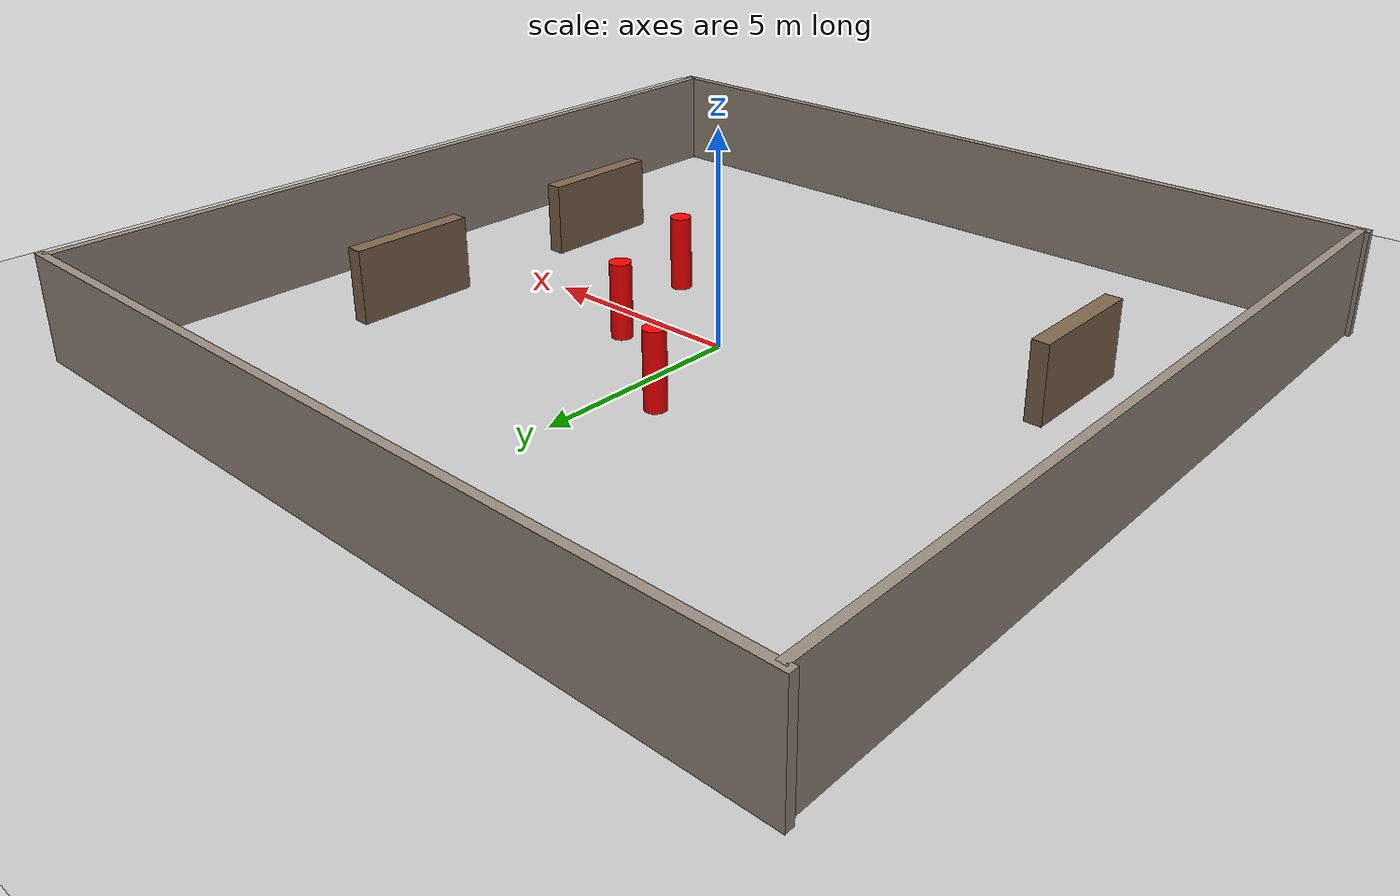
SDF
<?xml version="1.0" ?>
<sdf version="1.6">
  <world name="warehouse2_dynamic">

    <!-- ═══════════════════════════════════════════════════════
         PHYSICS
    ═══════════════════════════════════════════════════════ -->
    <physics name="default_physics" default="true" type="ode">
      <max_step_size>0.001</max_step_size>
      <real_time_factor>1.0</real_time_factor>
      <real_time_update_rate>1000</real_time_update_rate>
      <ode>
        <solver>
          <type>quick</type>
          <iters>150</iters>
          <precon_iters>0</precon_iters>
          <sor>1.400000</sor>
          <use_dynamic_moi_rescaling>1</use_dynamic_moi_rescaling>
        </solver>
        <constraints>
          <cfm>0.00001</cfm>
          <erp>0.2</erp>
          <contact_max_correcting_vel>2000.000000</contact_max_correcting_vel>
          <contact_surface_layer>0.01000</contact_surface_layer>
        </constraints>
      </ode>
    </physics>

    <!-- ═══════════════════════════════════════════════════════
         SCENE / SKY / AMBIENT
    ═══════════════════════════════════════════════════════ -->
    <scene>
      <ambient>0.4 0.4 0.4 1.0</ambient>
      <background>0.25 0.25 0.25 1.0</background>
      <shadows>true</shadows>
      <sky>
        <clouds>
          <speed>12</speed>
        </clouds>
      </sky>
    </scene>

    <!-- ═══════════════════════════════════════════════════════
         GRAVITY
    ═══════════════════════════════════════════════════════ -->
    <gravity>0 0 -9.8</gravity>
    <magnetic_field>6e-06 2.3e-05 -4.2e-05</magnetic_field>
    <atmosphere type="adiabatic"/>

    <!-- ═══════════════════════════════════════════════════════
         GUI
    ═══════════════════════════════════════════════════════ -->
    <gui fullscreen="0">
      <camera name="user_camera">
        <pose>-3.5 -4.5 8.0 0 0.8 0.8</pose>
        <view_controller>orbit</view_controller>
        <projection_type>perspective</projection_type>
      </camera>
    </gui>

    <!-- ═══════════════════════════════════════════════════════
         SUNLIGHT
    ═══════════════════════════════════════════════════════ -->
    <light type="directional" name="sun">
      <cast_shadows>true</cast_shadows>
      <pose>0 0 20 0 0 0</pose>
      <diffuse>0.8 0.8 0.8 1</diffuse>
      <specular>0.2 0.2 0.2 1</specular>
      <attenuation>
        <range>1000</range>
        <constant>0.9</constant>
        <linear>0.01</linear>
        <quadratic>0.001</quadratic>
      </attenuation>
      <direction>-0.5 0.1 -0.9</direction>
    </light>

    <!-- Warehouse overhead lamp style fill lights -->
    <light type="point" name="overhead_light_1">
      <cast_shadows>false</cast_shadows>
      <pose>0 0 4.0 0 0 0</pose>
      <diffuse>0.7 0.7 0.7 1</diffuse>
      <specular>0.1 0.1 0.1 1</specular>
      <attenuation>
        <range>20</range>
        <constant>0.5</constant>
        <linear>0.01</linear>
        <quadratic>0.001</quadratic>
      </attenuation>
    </light>

    <light type="point" name="overhead_light_2">
      <cast_shadows>false</cast_shadows>
      <pose>5 0 4.0 0 0 0</pose>
      <diffuse>0.7 0.7 0.7 1</diffuse>
      <specular>0.1 0.1 0.1 1</specular>
      <attenuation>
        <range>20</range>
        <constant>0.5</constant>
        <linear>0.01</linear>
        <quadratic>0.001</quadratic>
      </attenuation>
    </light>

    <light type="point" name="overhead_light_3">
      <cast_shadows>false</cast_shadows>
      <pose>-5 0 4.0 0 0 0</pose>
      <diffuse>0.7 0.7 0.7 1</diffuse>
      <specular>0.1 0.1 0.1 1</specular>
      <attenuation>
        <range>20</range>
        <constant>0.5</constant>
        <linear>0.01</linear>
        <quadratic>0.001</quadratic>
      </attenuation>
    </light>

    <!-- ═══════════════════════════════════════════════════════
         GROUND PLANE
    ═══════════════════════════════════════════════════════ -->
    <model name="ground_plane">
      <static>true</static>
      <link name="link">
        <collision name="collision">
          <geometry>
            <plane>
              <normal>0 0 1</normal>
              <size>40 40</size>
            </plane>
          </geometry>
          <surface>
            <friction>
              <ode>
                <mu>100</mu>
                <mu2>50</mu2>
              </ode>
            </friction>
          </surface>
        </collision>
        <visual name="visual">
          <cast_shadows>false</cast_shadows>
          <geometry>
            <plane>
              <normal>0 0 1</normal>
              <size>40 40</size>
            </plane>
          </geometry>
          <material>
            <script>
              <uri>file://media/materials/scripts/gazebo.material</uri>
              <name>Gazebo/Concrete</name>
            </script>
          </material>
        </visual>
      </link>
    </model>

    <!-- ═══════════════════════════════════════════════════════
         WAREHOUSE WALLS
         20 m x 20 m perimeter, 2.5 m tall, 0.2 m thick
    ═══════════════════════════════════════════════════════ -->

    <!-- South wall -->
    <model name="wall_south">
      <static>true</static>
      <pose>0 -10 1.25 0 0 0</pose>
      <link name="link">
        <collision name="collision">
          <geometry><box><size>20.4 0.2 2.5</size></box></geometry>
        </collision>
        <visual name="visual">
          <geometry><box><size>20.4 0.2 2.5</size></box></geometry>
          <material>
            <ambient>0.6 0.55 0.5 1</ambient>
            <diffuse>0.6 0.55 0.5 1</diffuse>
          </material>
        </visual>
      </link>
    </model>

    <!-- North wall -->
    <model name="wall_north">
      <static>true</static>
      <pose>0 10 1.25 0 0 0</pose>
      <link name="link">
        <collision name="collision">
          <geometry><box><size>20.4 0.2 2.5</size></box></geometry>
        </collision>
        <visual name="visual">
          <geometry><box><size>20.4 0.2 2.5</size></box></geometry>
          <material>
            <ambient>0.6 0.55 0.5 1</ambient>
            <diffuse>0.6 0.55 0.5 1</diffuse>
          </material>
        </visual>
      </link>
    </model>

    <!-- West wall -->
    <model name="wall_west">
      <static>true</static>
      <pose>-10 0 1.25 0 0 0</pose>
      <link name="link">
        <collision name="collision">
          <geometry><box><size>0.2 20.0 2.5</size></box></geometry>
        </collision>
        <visual name="visual">
          <geometry><box><size>0.2 20.0 2.5</size></box></geometry>
          <material>
            <ambient>0.6 0.55 0.5 1</ambient>
            <diffuse>0.6 0.55 0.5 1</diffuse>
          </material>
        </visual>
      </link>
    </model>

    <!-- East wall -->
    <model name="wall_east">
      <static>true</static>
      <pose>10 0 1.25 0 0 0</pose>
      <link name="link">
        <collision name="collision">
          <geometry><box><size>0.2 20.0 2.5</size></box></geometry>
        </collision>
        <visual name="visual">
          <geometry><box><size>0.2 20.0 2.5</size></box></geometry>
          <material>
            <ambient>0.6 0.55 0.5 1</ambient>
            <diffuse>0.6 0.55 0.5 1</diffuse>
          </material>
        </visual>
      </link>
    </model>

    <!-- ═══════════════════════════════════════════════════════
         WAREHOUSE SHELVES (static props for realism)
    ═══════════════════════════════════════════════════════ -->

    <!-- Shelf row A (east side) -->
    <model name="shelf_A1">
      <static>true</static>
      <pose>7.0 -3.0 0.9 0 0 0</pose>
      <link name="link">
        <collision name="collision">
          <geometry><box><size>0.4 3.0 1.8</size></box></geometry>
        </collision>
        <visual name="visual">
          <geometry><box><size>0.4 3.0 1.8</size></box></geometry>
          <material>
            <ambient>0.5 0.4 0.3 1</ambient>
            <diffuse>0.5 0.4 0.3 1</diffuse>
          </material>
        </visual>
      </link>
    </model>

    <model name="shelf_A2">
      <static>true</static>
      <pose>7.0 3.0 0.9 0 0 0</pose>
      <link name="link">
        <collision name="collision">
          <geometry><box><size>0.4 3.0 1.8</size></box></geometry>
        </collision>
        <visual name="visual">
          <geometry><box><size>0.4 3.0 1.8</size></box></geometry>
          <material>
            <ambient>0.5 0.4 0.3 1</ambient>
            <diffuse>0.5 0.4 0.3 1</diffuse>
          </material>
        </visual>
      </link>
    </model>

    <!-- Shelf row B (west side) -->
    <model name="shelf_B1">
      <static>true</static>
      <pose>-7.0 -3.0 0.9 0 0 0</pose>
      <link name="link">
        <collision name="collision">
          <geometry><box><size>0.4 3.0 1.8</size></box></geometry>
        </collision>
        <visual name="visual">
          <geometry><box><size>0.4 3.0 1.8</size></box></geometry>
          <material>
            <ambient>0.5 0.4 0.3 1</ambient>
            <diffuse>0.5 0.4 0.3 1</diffuse>
          </material>
        </visual>
      </link>
    </model>

    <model name="dynamic_obs_1">
      <allow_auto_disable>false</allow_auto_disable>
      <pose>2.0 1.0 0.9 0 0 0</pose>
      <link name="link">
        <inertial>
          <mass>70.0</mass>
          <inertia>
            <ixx>36.458</ixx><ixy>0</ixy><ixz>0</ixz>
            <iyy>36.458</iyy><iyz>0</iyz>
            <izz>2.188</izz>
          </inertia>
        </inertial>
        <collision name="collision">
          <geometry>
            <cylinder>
              <radius>0.25</radius>
              <length>1.80</length>
            </cylinder>
          </geometry>
          <surface>
            <friction>
              <ode><mu>0.8</mu><mu2>0.8</mu2></ode>
            </friction>
          </surface>
        </collision>
        <visual name="visual">
          <geometry>
            <cylinder>
              <radius>0.25</radius>
              <length>1.80</length>
            </cylinder>
          </geometry>
          <material>
            <ambient>1.0 0.0 0.0 1.0</ambient>
            <diffuse>1.0 0.0 0.0 1.0</diffuse>
            <specular>0.3 0.0 0.0 1.0</specular>
            <emissive>0.1 0.0 0.0 1.0</emissive>
          </material>
        </visual>
      </link>
      <plugin name="planar_move_1" filename="libgazebo_ros_planar_move.so">
        <ros>
          <namespace>/dynamic_obs_1</namespace>
        </ros>
        <update_rate>10</update_rate>
        <publish_rate>10</publish_rate>
        <robot_base_frame>dynamic_obs_1/link</robot_base_frame>
      </plugin>
    </model>

    <model name="dynamic_obs_2">
      <allow_auto_disable>false</allow_auto_disable>
      <pose>-1.0 3.0 0.9 0 0 0</pose>
      <link name="link">
        <inertial>
          <mass>70.0</mass>
          <inertia>
            <ixx>36.458</ixx><ixy>0</ixy><ixz>0</ixz>
            <iyy>36.458</iyy><iyz>0</iyz>
            <izz>2.188</izz>
          </inertia>
        </inertial>
        <collision name="collision">
          <geometry>
            <cylinder>
              <radius>0.25</radius>
              <length>1.80</length>
            </cylinder>
          </geometry>
          <surface>
            <friction>
              <ode><mu>0.8</mu><mu2>0.8</mu2></ode>
            </friction>
          </surface>
        </collision>
        <visual name="visual">
          <geometry>
            <cylinder>
              <radius>0.25</radius>
              <length>1.80</length>
            </cylinder>
          </geometry>
          <material>
            <ambient>1.0 0.0 0.0 1.0</ambient>
            <diffuse>1.0 0.0 0.0 1.0</diffuse>
            <specular>0.3 0.0 0.0 1.0</specular>
            <emissive>0.1 0.0 0.0 1.0</emissive>
          </material>
        </visual>
      </link>
      <plugin name="planar_move_2" filename="libgazebo_ros_planar_move.so">
        <ros>
          <namespace>/dynamic_obs_2</namespace>
        </ros>
        <update_rate>10</update_rate>
        <publish_rate>10</publish_rate>
        <robot_base_frame>dynamic_obs_2/link</robot_base_frame>
      </plugin>
    </model>

    <model name="dynamic_obs_3">
      <allow_auto_disable>false</allow_auto_disable>
      <pose>3.0 -2.0 0.9 0 0 0</pose>
      <link name="link">
        <inertial>
          <mass>70.0</mass>
          <inertia>
            <ixx>36.458</ixx><ixy>0</ixy><ixz>0</ixz>
            <iyy>36.458</iyy><iyz>0</iyz>
            <izz>2.188</izz>
          </inertia>
        </inertial>
        <collision name="collision">
          <geometry>
            <cylinder>
              <radius>0.25</radius>
              <length>1.80</length>
            </cylinder>
          </geometry>
          <surface>
            <friction>
              <ode><mu>0.8</mu><mu2>0.8</mu2></ode>
            </friction>
          </surface>
        </collision>
        <visual name="visual">
          <geometry>
            <cylinder>
              <radius>0.25</radius>
              <length>1.80</length>
            </cylinder>
          </geometry>
          <material>
            <ambient>1.0 0.0 0.0 1.0</ambient>
            <diffuse>1.0 0.0 0.0 1.0</diffuse>
            <specular>0.3 0.0 0.0 1.0</specular>
            <emissive>0.1 0.0 0.0 1.0</emissive>
          </material>
        </visual>
      </link>
      <plugin name="planar_move_3" filename="libgazebo_ros_planar_move.so">
        <ros>
          <namespace>/dynamic_obs_3</namespace>
        </ros>
        <update_rate>10</update_rate>
        <publish_rate>10</publish_rate>
        <robot_base_frame>dynamic_obs_3/link</robot_base_frame>
      </plugin>
    </model>

  </world>
</sdf>
